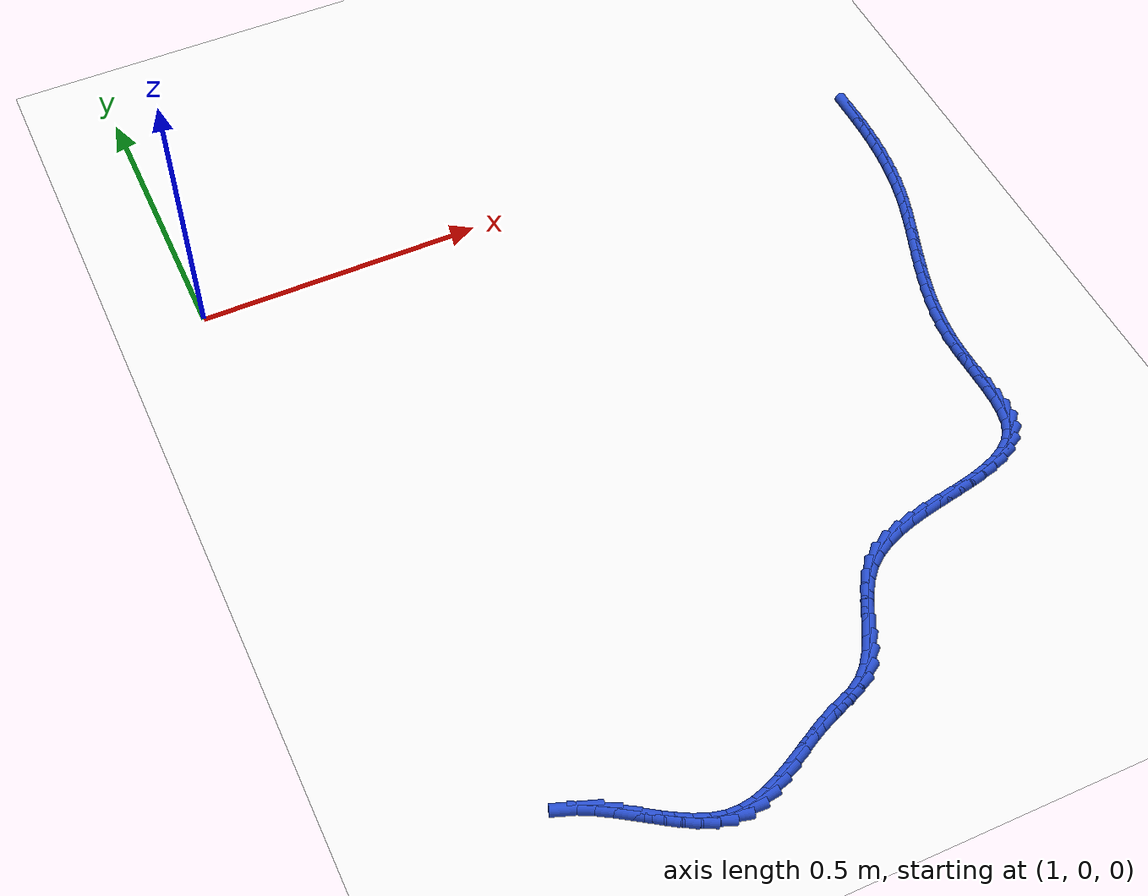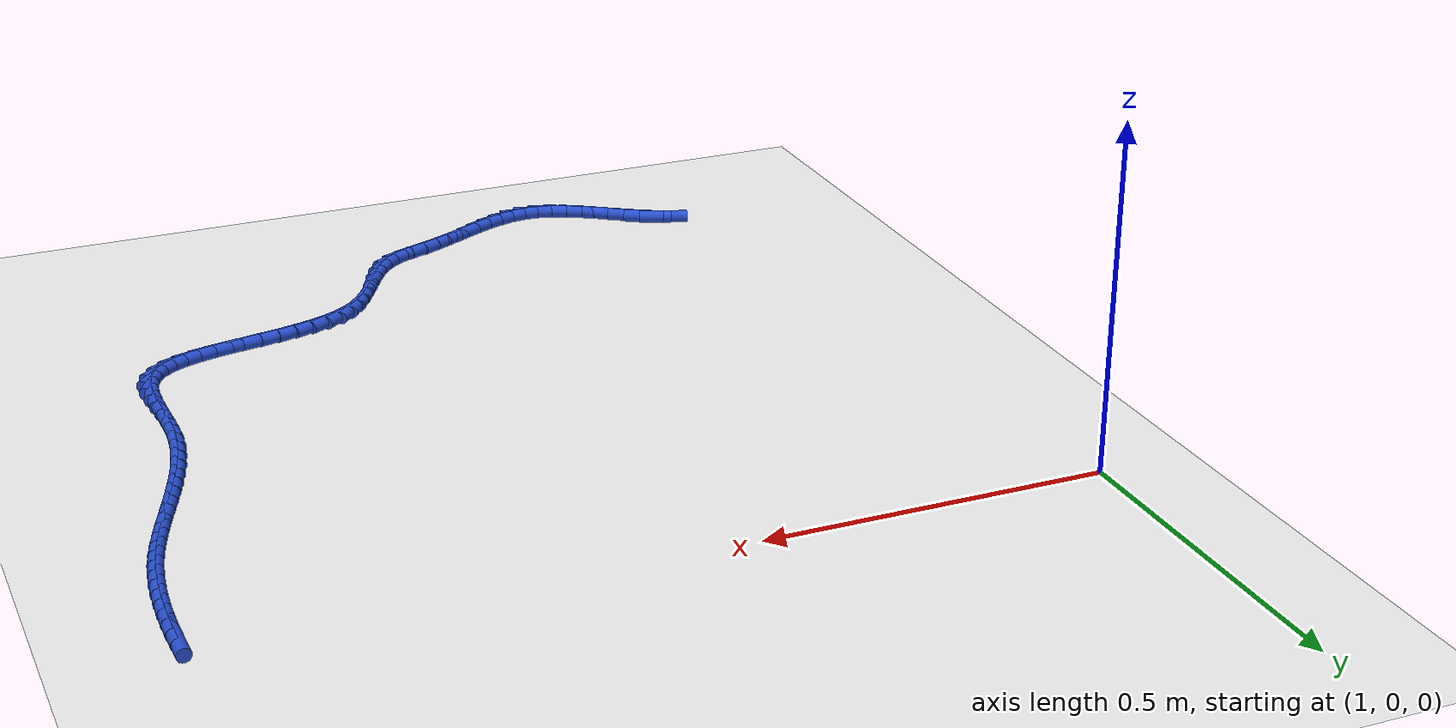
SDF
<sdf version="1.6">
 <world name="default">
  <model name="ground_plane">
   <static>1</static>
   <link name="link">
    <collision name="collision">
     <geometry><plane><normal>0 0 1</normal><size>100 100</size></plane></geometry>
     <surface><friction><ode><mu>100</mu><mu2>50</mu2></ode></friction></surface>
    </collision>
    <visual name="visual">
     <cast_shadows>0</cast_shadows>
     <geometry><plane><normal>0 0 1</normal><size>100 100</size></plane></geometry>
     <material>
      <script><uri>file://media/materials/scripts/gazebo.material</uri><name>Gazebo/WhiteGlow</name></script>
     </material>
    </visual>
   </link>
  </model>
  <model name="line">
   <link name="link_144">
    <pose>2.246459539599185 -0.03094970939625221 0.01 0 1.57 -1.5632055509941005</pose>
    <collision name="collision">
     <geometry><cylinder><radius>0.01</radius><length>0.08</length></cylinder></geometry>
    </collision>
    <visual name="visual">
     <material>
      <script><name>Gazebo/Blue</name><uri>file://media/materials/scripts/gazebo.material</uri></script>
     </material>
     <geometry><cylinder><radius>0.01</radius><length>0.08</length></cylinder></geometry>
    </visual>
   </link>
   <link name="link_145">
    <pose>2.2466534871471384 -0.05649964367842406 0.01 0 1.57 1.5554515315531487</pose>
    <collision name="collision">
     <geometry><cylinder><radius>0.01</radius><length>0.08</length></cylinder></geometry>
    </collision>
    <visual name="visual">
     <material>
      <script><name>Gazebo/Blue</name><uri>file://media/materials/scripts/gazebo.material</uri></script>
     </material>
     <geometry><cylinder><radius>0.01</radius><length>0.08</length></cylinder></geometry>
    </visual>
   </link>
   <link name="link_146">
    <pose>2.246263475280511 -0.08191420600495972 0.01 0 1.57 1.5299137964669351</pose>
    <collision name="collision">
     <geometry><cylinder><radius>0.01</radius><length>0.08</length></cylinder></geometry>
    </collision>
    <visual name="visual">
     <material>
      <script><name>Gazebo/Blue</name><uri>file://media/materials/scripts/gazebo.material</uri></script>
     </material>
     <geometry><cylinder><radius>0.01</radius><length>0.08</length></cylinder></geometry>
    </visual>
   </link>
   <link name="link_147">
    <pose>2.2452302553174794 -0.10717302085228136 0.01 0 1.57 1.5017082751921802</pose>
    <collision name="collision">
     <geometry><cylinder><radius>0.01</radius><length>0.08</length></cylinder></geometry>
    </collision>
    <visual name="visual">
     <material>
      <script><name>Gazebo/Blue</name><uri>file://media/materials/scripts/gazebo.material</uri></script>
     </material>
     <geometry><cylinder><radius>0.01</radius><length>0.08</length></cylinder></geometry>
    </visual>
   </link>
   <link name="link_148">
    <pose>2.243494578576221 -0.13225571269681102 0.01 0 1.57 1.470779055072106</pose>
    <collision name="collision">
     <geometry><cylinder><radius>0.01</radius><length>0.08</length></cylinder></geometry>
    </collision>
    <visual name="visual">
     <material>
      <script><name>Gazebo/Blue</name><uri>file://media/materials/scripts/gazebo.material</uri></script>
     </material>
     <geometry><cylinder><radius>0.01</radius><length>0.08</length></cylinder></geometry>
    </visual>
   </link>
   <link name="link_149">
    <pose>2.2409971963749107 -0.15714190601497086 0.01 0 1.57 1.4370862235217339</pose>
    <collision name="collision">
     <geometry><cylinder><radius>0.01</radius><length>0.08</length></cylinder></geometry>
    </collision>
    <visual name="visual">
     <material>
      <script><name>Gazebo/Blue</name><uri>file://media/materials/scripts/gazebo.material</uri></script>
     </material>
     <geometry><cylinder><radius>0.01</radius><length>0.08</length></cylinder></geometry>
    </visual>
   </link>
   <link name="link_150">
    <pose>2.2376788600317274 -0.18181122528318308 0.01 0 1.57 1.400613137324725</pose>
    <collision name="collision">
     <geometry><cylinder><radius>0.01</radius><length>0.08</length></cylinder></geometry>
    </collision>
    <visual name="visual">
     <material>
      <script><name>Gazebo/Blue</name><uri>file://media/materials/scripts/gazebo.material</uri></script>
     </material>
     <geometry><cylinder><radius>0.01</radius><length>0.08</length></cylinder></geometry>
    </visual>
   </link>
   <link name="link_151">
    <pose>2.2334803208648473 -0.20624329497786964 0.01 0 1.57 1.3613744743441831</pose>
    <collision name="collision">
     <geometry><cylinder><radius>0.01</radius><length>0.08</length></cylinder></geometry>
    </collision>
    <visual name="visual">
     <material>
      <script><name>Gazebo/Blue</name><uri>file://media/materials/scripts/gazebo.material</uri></script>
     </material>
     <geometry><cylinder><radius>0.01</radius><length>0.08</length></cylinder></geometry>
    </visual>
   </link>
   <link name="link_152">
    <pose>2.2283423301924468 -0.23041773957545206 0.01 0 1.57 1.3198387701839525</pose>
    <collision name="collision">
     <geometry><cylinder><radius>0.01</radius><length>0.08</length></cylinder></geometry>
    </collision>
    <visual name="visual">
     <material>
      <script><name>Gazebo/Blue</name><uri>file://media/materials/scripts/gazebo.material</uri></script>
     </material>
     <geometry><cylinder><radius>0.01</radius><length>0.08</length></cylinder></geometry>
    </visual>
   </link>
   <link name="link_153">
    <pose>2.222215231470859 -0.2543179077056918 0.01 0 1.57 1.2821159260813804</pose>
    <collision name="collision">
     <geometry><cylinder><radius>0.01</radius><length>0.08</length></cylinder></geometry>
    </collision>
    <visual name="visual">
     <material>
      <script><name>Gazebo/Blue</name><uri>file://media/materials/scripts/gazebo.material</uri></script>
     </material>
     <geometry><cylinder><radius>0.01</radius><length>0.08</length></cylinder></geometry>
    </visual>
   </link>
   <link name="link_154">
    <pose>2.215187877704944 -0.2779809244128485 0.01 0 1.57 1.2528733923422144</pose>
    <collision name="collision">
     <geometry><cylinder><radius>0.01</radius><length>0.08</length></cylinder></geometry>
    </collision>
    <visual name="visual">
     <material>
      <script><name>Gazebo/Blue</name><uri>file://media/materials/scripts/gazebo.material</uri></script>
     </material>
     <geometry><cylinder><radius>0.01</radius><length>0.08</length></cylinder></geometry>
    </visual>
   </link>
   <link name="link_155">
    <pose>2.207453237638342 -0.30148433773861705 0.01 0 1.57 1.2322741911832809</pose>
    <collision name="collision">
     <geometry><cylinder><radius>0.01</radius><length>0.08</length></cylinder></geometry>
    </collision>
    <visual name="visual">
     <material>
      <script><name>Gazebo/Blue</name><uri>file://media/materials/scripts/gazebo.material</uri></script>
     </material>
     <geometry><cylinder><radius>0.01</radius><length>0.08</length></cylinder></geometry>
    </visual>
   </link>
   <link name="link_156">
    <pose>2.199206817226497 -0.32490668079868207 0.01 0 1.57 1.2202765274163798</pose>
    <collision name="collision">
     <geometry><cylinder><radius>0.01</radius><length>0.08</length></cylinder></geometry>
    </collision>
    <visual name="visual">
     <material>
      <script><name>Gazebo/Blue</name><uri>file://media/materials/scripts/gazebo.material</uri></script>
     </material>
     <geometry><cylinder><radius>0.01</radius><length>0.08</length></cylinder></geometry>
    </visual>
   </link>
   <link name="link_157">
    <pose>2.190644122424851 -0.34832648670872807 0.01 0 1.57 1.216790198376191</pose>
    <collision name="collision">
     <geometry><cylinder><radius>0.01</radius><length>0.08</length></cylinder></geometry>
    </collision>
    <visual name="visual">
     <material>
      <script><name>Gazebo/Blue</name><uri>file://media/materials/scripts/gazebo.material</uri></script>
     </material>
     <geometry><cylinder><radius>0.01</radius><length>0.08</length></cylinder></geometry>
    </visual>
   </link>
   <link name="link_158">
    <pose>2.181960659188846 -0.37182228858443933 0.01 0 1.57 1.2217039969587282</pose>
    <collision name="collision">
     <geometry><cylinder><radius>0.01</radius><length>0.08</length></cylinder></geometry>
    </collision>
    <visual name="visual">
     <material>
      <script><name>Gazebo/Blue</name><uri>file://media/materials/scripts/gazebo.material</uri></script>
     </material>
     <geometry><cylinder><radius>0.01</radius><length>0.08</length></cylinder></geometry>
    </visual>
   </link>
   <link name="link_159">
    <pose>2.173351933473927 -0.39547261954150065 0.01 0 1.57 1.2348940418488967</pose>
    <collision name="collision">
     <geometry><cylinder><radius>0.01</radius><length>0.08</length></cylinder></geometry>
    </collision>
    <visual name="visual">
     <material>
      <script><name>Gazebo/Blue</name><uri>file://media/materials/scripts/gazebo.material</uri></script>
     </material>
     <geometry><cylinder><radius>0.01</radius><length>0.08</length></cylinder></geometry>
    </visual>
   </link>
   <link name="link_160">
    <pose>2.165013451235535 -0.4193560126955963 0.01 0 1.57 1.2562145105029123</pose>
    <collision name="collision">
     <geometry><cylinder><radius>0.01</radius><length>0.08</length></cylinder></geometry>
    </collision>
    <visual name="visual">
     <material>
      <script><name>Gazebo/Blue</name><uri>file://media/materials/scripts/gazebo.material</uri></script>
     </material>
     <geometry><cylinder><radius>0.01</radius><length>0.08</length></cylinder></geometry>
    </visual>
   </link>
   <link name="link_161">
    <pose>2.1571407184291136 -0.44355100116241086 0.01 0 1.57 1.285472781796806</pose>
    <collision name="collision">
     <geometry><cylinder><radius>0.01</radius><length>0.08</length></cylinder></geometry>
    </collision>
    <visual name="visual">
     <material>
      <script><name>Gazebo/Blue</name><uri>file://media/materials/scripts/gazebo.material</uri></script>
     </material>
     <geometry><cylinder><radius>0.01</radius><length>0.08</length></cylinder></geometry>
    </visual>
   </link>
   <link name="link_162">
    <pose>2.149929241010105 -0.46813611805762867 0.01 0 1.57 1.3223918869950162</pose>
    <collision name="collision">
     <geometry><cylinder><radius>0.01</radius><length>0.08</length></cylinder></geometry>
    </collision>
    <visual name="visual">
     <material>
      <script><name>Gazebo/Blue</name><uri>file://media/materials/scripts/gazebo.material</uri></script>
     </material>
     <geometry><cylinder><radius>0.01</radius><length>0.08</length></cylinder></geometry>
    </visual>
   </link>
   <link name="link_163">
    <pose>2.1435745249339533 -0.49318989649693445 0.01 0 1.57 1.3665650085226213</pose>
    <collision name="collision">
     <geometry><cylinder><radius>0.01</radius><length>0.08</length></cylinder></geometry>
    </collision>
    <visual name="visual">
     <material>
      <script><name>Gazebo/Blue</name><uri>file://media/materials/scripts/gazebo.material</uri></script>
     </material>
     <geometry><cylinder><radius>0.01</radius><length>0.08</length></cylinder></geometry>
    </visual>
   </link>
   <link name="link_164">
    <pose>2.1382720761561007 -0.5187908695960127 0.01 0 1.57 1.4174096391313418</pose>
    <collision name="collision">
     <geometry><cylinder><radius>0.01</radius><length>0.08</length></cylinder></geometry>
    </collision>
    <visual name="visual">
     <material>
      <script><name>Gazebo/Blue</name><uri>file://media/materials/scripts/gazebo.material</uri></script>
     </material>
     <geometry><cylinder><radius>0.01</radius><length>0.08</length></cylinder></geometry>
    </visual>
   </link>
   <link name="link_165">
    <pose>2.1342174006319903 -0.5450175704705478 0.01 0 1.57 1.4741322091356461</pose>
    <collision name="collision">
     <geometry><cylinder><radius>0.01</radius><length>0.08</length></cylinder></geometry>
    </collision>
    <visual name="visual">
     <material>
      <script><name>Gazebo/Blue</name><uri>file://media/materials/scripts/gazebo.material</uri></script>
     </material>
     <geometry><cylinder><radius>0.01</radius><length>0.08</length></cylinder></geometry>
    </visual>
   </link>
   <link name="link_166">
    <pose>2.1316060043170646 -0.5719485322362241 0.01 0 1.57 1.5346683767386964</pose>
    <collision name="collision">
     <geometry><cylinder><radius>0.01</radius><length>0.08</length></cylinder></geometry>
    </collision>
    <visual name="visual">
     <material>
      <script><name>Gazebo/Blue</name><uri>file://media/materials/scripts/gazebo.material</uri></script>
     </material>
     <geometry><cylinder><radius>0.01</radius><length>0.08</length></cylinder></geometry>
    </visual>
   </link>
   <link name="link_167">
    <pose>2.1306049950566575 -0.5996438126378468 0.01 0 1.57 -1.561454205841342</pose>
    <collision name="collision">
     <geometry><cylinder><radius>0.01</radius><length>0.08</length></cylinder></geometry>
    </collision>
    <visual name="visual">
     <material>
      <script><name>Gazebo/Blue</name><uri>file://media/materials/scripts/gazebo.material</uri></script>
     </material>
     <geometry><cylinder><radius>0.01</radius><length>0.08</length></cylinder></geometry>
    </visual>
   </link>
   <link name="link_168">
    <pose>2.1308683178793055 -0.6278296136345546 0.01 0 1.57 -1.5446243435112252</pose>
    <collision name="collision">
     <geometry><cylinder><radius>0.01</radius><length>0.08</length></cylinder></geometry>
    </collision>
    <visual name="visual">
     <material>
      <script><name>Gazebo/Blue</name><uri>file://media/materials/scripts/gazebo.material</uri></script>
     </material>
     <geometry><cylinder><radius>0.01</radius><length>0.08</length></cylinder></geometry>
    </visual>
   </link>
   <link name="link_169">
    <pose>2.131604247827486 -0.6559421911908158 0.01 0 1.57 -1.5561611965070263</pose>
    <collision name="collision">
     <geometry><cylinder><radius>0.01</radius><length>0.08</length></cylinder></geometry>
    </collision>
    <visual name="visual">
     <material>
      <script><name>Gazebo/Blue</name><uri>file://media/materials/scripts/gazebo.material</uri></script>
     </material>
     <geometry><cylinder><radius>0.01</radius><length>0.08</length></cylinder></geometry>
    </visual>
   </link>
   <link name="link_170">
    <pose>2.132006244599332 -0.6834081626373893 0.01 0 1.57 1.5426669963017228</pose>
    <collision name="collision">
     <geometry><cylinder><radius>0.01</radius><length>0.08</length></cylinder></geometry>
    </collision>
    <visual name="visual">
     <material>
      <script><name>Gazebo/Blue</name><uri>file://media/materials/scripts/gazebo.material</uri></script>
     </material>
     <geometry><cylinder><radius>0.01</radius><length>0.08</length></cylinder></geometry>
    </visual>
   </link>
   <link name="link_171">
    <pose>2.131267767892976 -0.7096541453050315 0.01 0 1.57 1.4614104199110989</pose>
    <collision name="collision">
     <geometry><cylinder><radius>0.01</radius><length>0.08</length></cylinder></geometry>
    </collision>
    <visual name="visual">
     <material>
      <script><name>Gazebo/Blue</name><uri>file://media/materials/scripts/gazebo.material</uri></script>
     </material>
     <geometry><cylinder><radius>0.01</radius><length>0.08</length></cylinder></geometry>
    </visual>
   </link>
   <link name="link_172">
    <pose>2.1285822774065535 -0.7341067565244995 0.01 0 1.57 1.329333005715901</pose>
    <collision name="collision">
     <geometry><cylinder><radius>0.01</radius><length>0.08</length></cylinder></geometry>
    </collision>
    <visual name="visual">
     <material>
      <script><name>Gazebo/Blue</name><uri>file://media/materials/scripts/gazebo.material</uri></script>
     </material>
     <geometry><cylinder><radius>0.01</radius><length>0.08</length></cylinder></geometry>
    </visual>
   </link>
   <link name="link_173">
    <pose>2.123143232838197 -0.7561926136265507 0.01 0 1.57 1.131407792978323</pose>
    <collision name="collision">
     <geometry><cylinder><radius>0.01</radius><length>0.08</length></cylinder></geometry>
    </collision>
    <visual name="visual">
     <material>
      <script><name>Gazebo/Blue</name><uri>file://media/materials/scripts/gazebo.material</uri></script>
     </material>
     <geometry><cylinder><radius>0.01</radius><length>0.08</length></cylinder></geometry>
    </visual>
   </link>
   <link name="link_174">
    <pose>2.114144096914351 -0.7753383363444399 0.01 0 1.57 0.878369589600908</pose>
    <collision name="collision">
     <geometry><cylinder><radius>0.01</radius><length>0.08</length></cylinder></geometry>
    </collision>
    <visual name="visual">
     <material>
      <script><name>Gazebo/Blue</name><uri>file://media/materials/scripts/gazebo.material</uri></script>
     </material>
     <geometry><cylinder><radius>0.01</radius><length>0.08</length></cylinder></geometry>
    </visual>
   </link>
   <link name="link_175">
    <pose>2.1010196048852743 -0.7911619569862904 0.01 0 1.57 0.6489696468570989</pose>
    <collision name="collision">
     <geometry><cylinder><radius>0.01</radius><length>0.08</length></cylinder></geometry>
    </collision>
    <visual name="visual">
     <material>
      <script><name>Gazebo/Blue</name><uri>file://media/materials/scripts/gazebo.material</uri></script>
     </material>
     <geometry><cylinder><radius>0.01</radius><length>0.08</length></cylinder></geometry>
    </visual>
   </link>
   <link name="link_176">
    <pose>2.0841031400354204 -0.8039944466209452 0.01 0 1.57 0.4737260098855911</pose>
    <collision name="collision">
     <geometry><cylinder><radius>0.01</radius><length>0.08</length></cylinder></geometry>
    </collision>
    <visual name="visual">
     <material>
      <script><name>Gazebo/Blue</name><uri>file://media/materials/scripts/gazebo.material</uri></script>
     </material>
     <geometry><cylinder><radius>0.01</radius><length>0.08</length></cylinder></geometry>
    </visual>
   </link>
   <link name="link_177">
    <pose>2.0639372660194786 -0.8143327287126775 0.01 0 1.57 0.3496837506233255</pose>
    <collision name="collision">
     <geometry><cylinder><radius>0.01</radius><length>0.08</length></cylinder></geometry>
    </collision>
    <visual name="visual">
     <material>
      <script><name>Gazebo/Blue</name><uri>file://media/materials/scripts/gazebo.material</uri></script>
     </material>
     <geometry><cylinder><radius>0.01</radius><length>0.08</length></cylinder></geometry>
    </visual>
   </link>
   <link name="link_178">
    <pose>2.0410645464921386 -0.8226737267257603 0.01 0 1.57 0.26671164336916037</pose>
    <collision name="collision">
     <geometry><cylinder><radius>0.01</radius><length>0.08</length></cylinder></geometry>
    </collision>
    <visual name="visual">
     <material>
      <script><name>Gazebo/Blue</name><uri>file://media/materials/scripts/gazebo.material</uri></script>
     </material>
     <geometry><cylinder><radius>0.01</radius><length>0.08</length></cylinder></geometry>
    </visual>
   </link>
   <link name="link_179">
    <pose>2.016027545108089 -0.8295143641244672 0.01 0 1.57 0.21555835182775654</pose>
    <collision name="collision">
     <geometry><cylinder><radius>0.01</radius><length>0.08</length></cylinder></geometry>
    </collision>
    <visual name="visual">
     <material>
      <script><name>Gazebo/Blue</name><uri>file://media/materials/scripts/gazebo.material</uri></script>
     </material>
     <geometry><cylinder><radius>0.01</radius><length>0.08</length></cylinder></geometry>
    </visual>
   </link>
   <link name="link_180">
    <pose>1.9893688255220197 -0.8353515643730712 0.01 0 1.57 0.18986590845310305</pose>
    <collision name="collision">
     <geometry><cylinder><radius>0.01</radius><length>0.08</length></cylinder></geometry>
    </collision>
    <visual name="visual">
     <material>
      <script><name>Gazebo/Blue</name><uri>file://media/materials/scripts/gazebo.material</uri></script>
     </material>
     <geometry><cylinder><radius>0.01</radius><length>0.08</length></cylinder></geometry>
    </visual>
   </link>
   <link name="link_181">
    <pose>1.9616309513886188 -0.8406822509358454 0.01 0 1.57 0.18601869444322106</pose>
    <collision name="collision">
     <geometry><cylinder><radius>0.01</radius><length>0.08</length></cylinder></geometry>
    </collision>
    <visual name="visual">
     <material>
      <script><name>Gazebo/Blue</name><uri>file://media/materials/scripts/gazebo.material</uri></script>
     </material>
     <geometry><cylinder><radius>0.01</radius><length>0.08</length></cylinder></geometry>
    </visual>
   </link>
   <link name="link_182">
    <pose>1.9333564863625758 -0.8460033472770632 0.01 0 1.57 0.20265307832345208</pose>
    <collision name="collision">
     <geometry><cylinder><radius>0.01</radius><length>0.08</length></cylinder></geometry>
    </collision>
    <visual name="visual">
     <material>
      <script><name>Gazebo/Blue</name><uri>file://media/materials/scripts/gazebo.material</uri></script>
     </material>
     <geometry><cylinder><radius>0.01</radius><length>0.08</length></cylinder></geometry>
    </visual>
   </link>
   <link name="link_183">
    <pose>1.9050879940985803 -0.8518117768609977 0.01 0 1.57 0.24031141588963426</pose>
    <collision name="collision">
     <geometry><cylinder><radius>0.01</radius><length>0.08</length></cylinder></geometry>
    </collision>
    <visual name="visual">
     <material>
      <script><name>Gazebo/Blue</name><uri>file://media/materials/scripts/gazebo.material</uri></script>
     </material>
     <geometry><cylinder><radius>0.01</radius><length>0.08</length></cylinder></geometry>
    </visual>
   </link>
   <link name="link_184">
    <pose>1.8773680382513216 -0.8586044631519218 0.01 0 1.57 0.3012537939110839</pose>
    <collision name="collision">
     <geometry><cylinder><radius>0.01</radius><length>0.08</length></cylinder></geometry>
    </collision>
    <visual name="visual">
     <material>
      <script><name>Gazebo/Blue</name><uri>file://media/materials/scripts/gazebo.material</uri></script>
     </material>
     <geometry><cylinder><radius>0.01</radius><length>0.08</length></cylinder></geometry>
    </visual>
   </link>
   <link name="link_185">
    <pose>1.850739182475488 -0.8668783296141094 0.01 0 1.57 0.3892322159806557</pose>
    <collision name="collision">
     <geometry><cylinder><radius>0.01</radius><length>0.08</length></cylinder></geometry>
    </collision>
    <visual name="visual">
     <material>
      <script><name>Gazebo/Blue</name><uri>file://media/materials/scripts/gazebo.material</uri></script>
     </material>
     <geometry><cylinder><radius>0.01</radius><length>0.08</length></cylinder></geometry>
    </visual>
   </link>
   <link name="link_186">
    <pose>1.825743990425769 -0.8771302997118333 0.01 0 1.57 0.5087644582064051</pose>
    <collision name="collision">
     <geometry><cylinder><radius>0.01</radius><length>0.08</length></cylinder></geometry>
    </collision>
    <visual name="visual">
     <material>
      <script><name>Gazebo/Blue</name><uri>file://media/materials/scripts/gazebo.material</uri></script>
     </material>
     <geometry><cylinder><radius>0.01</radius><length>0.08</length></cylinder></geometry>
    </visual>
   </link>
   <link name="link_187">
    <pose>1.8029250257568536 -0.8898572969093668 0.01 0 1.57 0.6630652616357313</pose>
    <collision name="collision">
     <geometry><cylinder><radius>0.01</radius><length>0.08</length></cylinder></geometry>
    </collision>
    <visual name="visual">
     <material>
      <script><name>Gazebo/Blue</name><uri>file://media/materials/scripts/gazebo.material</uri></script>
     </material>
     <geometry><cylinder><radius>0.01</radius><length>0.08</length></cylinder></geometry>
    </visual>
   </link>
   <link name="link_188">
    <pose>1.7828247732679519 -0.905556161501516 0.01 0 1.57 0.8342156827469633</pose>
    <collision name="collision">
     <geometry><cylinder><radius>0.01</radius><length>0.08</length></cylinder></geometry>
    </collision>
    <visual name="visual">
     <material>
      <script><name>Gazebo/Blue</name><uri>file://media/materials/scripts/gazebo.material</uri></script>
     </material>
     <geometry><cylinder><radius>0.01</radius><length>0.08</length></cylinder></geometry>
    </visual>
   </link>
   <link name="link_189">
    <pose>1.7657082541960665 -0.9244310908783977 0.01 0 1.57 0.9647170492106234</pose>
    <collision name="collision">
     <geometry><cylinder><radius>0.01</radius><length>0.08</length></cylinder></geometry>
    </collision>
    <visual name="visual">
     <material>
      <script><name>Gazebo/Blue</name><uri>file://media/materials/scripts/gazebo.material</uri></script>
     </material>
     <geometry><cylinder><radius>0.01</radius><length>0.08</length></cylinder></geometry>
    </visual>
   </link>
   <link name="link_190">
    <pose>1.7509408548769738 -0.9457374307374564 0.01 0 1.57 1.044876318642683</pose>
    <collision name="collision">
     <geometry><cylinder><radius>0.01</radius><length>0.08</length></cylinder></geometry>
    </collision>
    <visual name="visual">
     <material>
      <script><name>Gazebo/Blue</name><uri>file://media/materials/scripts/gazebo.material</uri></script>
     </material>
     <geometry><cylinder><radius>0.01</radius><length>0.08</length></cylinder></geometry>
    </visual>
   </link>
   <link name="link_191">
    <pose>1.7377059526594365 -0.9685385605294121 0.01 0 1.57 1.0788169416677866</pose>
    <collision name="collision">
     <geometry><cylinder><radius>0.01</radius><length>0.08</length></cylinder></geometry>
    </collision>
    <visual name="visual">
     <material>
      <script><name>Gazebo/Blue</name><uri>file://media/materials/scripts/gazebo.material</uri></script>
     </material>
     <geometry><cylinder><radius>0.01</radius><length>0.08</length></cylinder></geometry>
    </visual>
   </link>
   <link name="link_192">
    <pose>1.7251869248922167 -0.9918978597049852 0.01 0 1.57 1.068611180687986</pose>
    <collision name="collision">
     <geometry><cylinder><radius>0.01</radius><length>0.08</length></cylinder></geometry>
    </collision>
    <visual name="visual">
     <material>
      <script><name>Gazebo/Blue</name><uri>file://media/materials/scripts/gazebo.material</uri></script>
     </material>
     <geometry><cylinder><radius>0.01</radius><length>0.08</length></cylinder></geometry>
    </visual>
   </link>
   <link name="link_193">
    <pose>1.7125671489240761 -1.014878707714896 0.01 0 1.57 1.0123285688823616</pose>
    <collision name="collision">
     <geometry><cylinder><radius>0.01</radius><length>0.08</length></cylinder></geometry>
    </collision>
    <visual name="visual">
     <material>
      <script><name>Gazebo/Blue</name><uri>file://media/materials/scripts/gazebo.material</uri></script>
     </material>
     <geometry><cylinder><radius>0.01</radius><length>0.08</length></cylinder></geometry>
    </visual>
   </link>
   <link name="link_194">
    <pose>1.6990300021037763 -1.0365444840098643 0.01 0 1.57 0.904278996453696</pose>
    <collision name="collision">
     <geometry><cylinder><radius>0.01</radius><length>0.08</length></cylinder></geometry>
    </collision>
    <visual name="visual">
     <material>
      <script><name>Gazebo/Blue</name><uri>file://media/materials/scripts/gazebo.material</uri></script>
     </material>
     <geometry><cylinder><radius>0.01</radius><length>0.08</length></cylinder></geometry>
    </visual>
   </link>
   <link name="link_195">
    <pose>1.6837588617800803 -1.0559585680406107 0.01 0 1.57 0.7385572336043673</pose>
    <collision name="collision">
     <geometry><cylinder><radius>0.01</radius><length>0.08</length></cylinder></geometry>
    </collision>
    <visual name="visual">
     <material>
      <script><name>Gazebo/Blue</name><uri>file://media/materials/scripts/gazebo.material</uri></script>
     </material>
     <geometry><cylinder><radius>0.01</radius><length>0.08</length></cylinder></geometry>
    </visual>
   </link>
   <link name="link_196">
    <pose>1.6659371053017504 -1.072184339257856 0.01 0 1.57 0.5390092194526042</pose>
    <collision name="collision">
     <geometry><cylinder><radius>0.01</radius><length>0.08</length></cylinder></geometry>
    </collision>
    <visual name="visual">
     <material>
      <script><name>Gazebo/Blue</name><uri>file://media/materials/scripts/gazebo.material</uri></script>
     </material>
     <geometry><cylinder><radius>0.01</radius><length>0.08</length></cylinder></geometry>
    </visual>
   </link>
   <link name="link_197">
    <pose>1.645028487405623 -1.0846894415227086 0.01 0 1.57 0.41059610874706864</pose>
    <collision name="collision">
     <geometry><cylinder><radius>0.01</radius><length>0.08</length></cylinder></geometry>
    </collision>
    <visual name="visual">
     <material>
      <script><name>Gazebo/Blue</name><uri>file://media/materials/scripts/gazebo.material</uri></script>
     </material>
     <geometry><cylinder><radius>0.01</radius><length>0.08</length></cylinder></geometry>
    </visual>
   </link>
   <link name="link_198">
    <pose>1.621789948786721 -1.0948061093556751 0.01 0 1.57 0.3742159219279309</pose>
    <collision name="collision">
     <geometry><cylinder><radius>0.01</radius><length>0.08</length></cylinder></geometry>
    </collision>
    <visual name="visual">
     <material>
      <script><name>Gazebo/Blue</name><uri>file://media/materials/scripts/gazebo.material</uri></script>
     </material>
     <geometry><cylinder><radius>0.01</radius><length>0.08</length></cylinder></geometry>
    </visual>
   </link>
   <link name="link_199">
    <pose>1.5973510189208877 -1.1044037974319605 0.01 0 1.57 0.41449347443925905</pose>
    <collision name="collision">
     <geometry><cylinder><radius>0.01</radius><length>0.08</length></cylinder></geometry>
    </collision>
    <visual name="visual">
     <material>
      <script><name>Gazebo/Blue</name><uri>file://media/materials/scripts/gazebo.material</uri></script>
     </material>
     <geometry><cylinder><radius>0.01</radius><length>0.08</length></cylinder></geometry>
    </visual>
   </link>
   <link name="link_200">
    <pose>1.572781213119182 -1.1152141190073894 0.01 0 1.57 0.46506822281233556</pose>
    <collision name="collision">
     <geometry><cylinder><radius>0.01</radius><length>0.08</length></cylinder></geometry>
    </collision>
    <visual name="visual">
     <material>
      <script><name>Gazebo/Blue</name><uri>file://media/materials/scripts/gazebo.material</uri></script>
     </material>
     <geometry><cylinder><radius>0.01</radius><length>0.08</length></cylinder></geometry>
    </visual>
   </link>
   <link name="link_201">
    <pose>1.5484720894462203 -1.1274118789028549 0.01 0 1.57 0.4877509710995159</pose>
    <collision name="collision">
     <geometry><cylinder><radius>0.01</radius><length>0.08</length></cylinder></geometry>
    </collision>
    <visual name="visual">
     <material>
      <script><name>Gazebo/Blue</name><uri>file://media/materials/scripts/gazebo.material</uri></script>
     </material>
     <geometry><cylinder><radius>0.01</radius><length>0.08</length></cylinder></geometry>
    </visual>
   </link>
   <link name="link_202">
    <pose>1.5243871773612785 -1.1401889902500266 0.01 0 1.57 0.48290207357345594</pose>
    <collision name="collision">
     <geometry><cylinder><radius>0.01</radius><length>0.08</length></cylinder></geometry>
    </collision>
    <visual name="visual">
     <material>
      <script><name>Gazebo/Blue</name><uri>file://media/materials/scripts/gazebo.material</uri></script>
     </material>
     <geometry><cylinder><radius>0.01</radius><length>0.08</length></cylinder></geometry>
    </visual>
   </link>
   <link name="link_203">
    <pose>1.5004832816221079 -1.1527219240975881 0.01 0 1.57 0.44948487807176374</pose>
    <collision name="collision">
     <geometry><cylinder><radius>0.01</radius><length>0.08</length></cylinder></geometry>
    </collision>
    <visual name="visual">
     <material>
      <script><name>Gazebo/Blue</name><uri>file://media/materials/scripts/gazebo.material</uri></script>
     </material>
     <geometry><cylinder><radius>0.01</radius><length>0.08</length></cylinder></geometry>
    </visual>
   </link>
   <link name="link_204">
    <pose>1.47671720698646 -1.164187151494223 0.01 0 1.57 0.38433939386534083</pose>
    <collision name="collision">
     <geometry><cylinder><radius>0.01</radius><length>0.08</length></cylinder></geometry>
    </collision>
    <visual name="visual">
     <material>
      <script><name>Gazebo/Blue</name><uri>file://media/materials/scripts/gazebo.material</uri></script>
     </material>
     <geometry><cylinder><radius>0.01</radius><length>0.08</length></cylinder></geometry>
    </visual>
   </link>
   <link name="link_205">
    <pose>1.4530457582120855 -1.1737611434886164 0.01 0 1.57 0.28262535137812866</pose>
    <collision name="collision">
     <geometry><cylinder><radius>0.01</radius><length>0.08</length></cylinder></geometry>
    </collision>
    <visual name="visual">
     <material>
      <script><name>Gazebo/Blue</name><uri>file://media/materials/scripts/gazebo.material</uri></script>
     </material>
     <geometry><cylinder><radius>0.01</radius><length>0.08</length></cylinder></geometry>
    </visual>
   </link>
   <link name="link_206">
    <pose>1.4294257400567358 -1.1806203711294527 0.01 0 1.57 0.13973077666649364</pose>
    <collision name="collision">
     <geometry><cylinder><radius>0.01</radius><length>0.08</length></cylinder></geometry>
    </collision>
    <visual name="visual">
     <material>
      <script><name>Gazebo/Blue</name><uri>file://media/materials/scripts/gazebo.material</uri></script>
     </material>
     <geometry><cylinder><radius>0.01</radius><length>0.08</length></cylinder></geometry>
    </visual>
   </link>
   <link name="link_207">
    <pose>1.4058139572781623 -1.1839413054654158 0.01 0 1.57 -0.043989349150674</pose>
    <collision name="collision">
     <geometry><cylinder><radius>0.01</radius><length>0.08</length></cylinder></geometry>
    </collision>
    <visual name="visual">
     <material>
      <script><name>Gazebo/Blue</name><uri>file://media/materials/scripts/gazebo.material</uri></script>
     </material>
     <geometry><cylinder><radius>0.01</radius><length>0.08</length></cylinder></geometry>
    </visual>
   </link>
   <link name="link_208">
    <pose>1.3821672151091784 -1.1829004291942433 0.01 0 1.57 -0.2429808459842451</pose>
    <collision name="collision">
     <geometry><cylinder><radius>0.01</radius><length>0.08</length></cylinder></geometry>
    </collision>
    <visual name="visual">
     <material>
      <script><name>Gazebo/Blue</name><uri>file://media/materials/scripts/gazebo.material</uri></script>
     </material>
     <geometry><cylinder><radius>0.01</radius><length>0.08</length></cylinder></geometry>
    </visual>
   </link>
   <link name="link_209">
    <pose>1.3584565450007853 -1.1770230667911183 0.01 0 1.57 -0.3958261222232011</pose>
    <collision name="collision">
     <geometry><cylinder><radius>0.01</radius><length>0.08</length></cylinder></geometry>
    </collision>
    <visual name="visual">
     <material>
      <script><name>Gazebo/Blue</name><uri>file://media/materials/scripts/gazebo.material</uri></script>
     </material>
     <geometry><cylinder><radius>0.01</radius><length>0.08</length></cylinder></geometry>
    </visual>
   </link>
   <link name="link_210">
    <pose>1.3347044838726256 -1.1670975107944144 0.01 0 1.57 -0.4974026059215954</pose>
    <collision name="collision">
     <geometry><cylinder><radius>0.01</radius><length>0.08</length></cylinder></geometry>
    </collision>
    <visual name="visual">
     <material>
      <script><name>Gazebo/Blue</name><uri>file://media/materials/scripts/gazebo.material</uri></script>
     </material>
     <geometry><cylinder><radius>0.01</radius><length>0.08</length></cylinder></geometry>
    </visual>
   </link>
   <link name="link_211">
    <pose>1.310945221050041 -1.154197782940716 0.01 0 1.57 -0.5576050211198195</pose>
    <collision name="collision">
     <geometry><cylinder><radius>0.01</radius><length>0.08</length></cylinder></geometry>
    </collision>
    <visual name="visual">
     <material>
      <script><name>Gazebo/Blue</name><uri>file://media/materials/scripts/gazebo.material</uri></script>
     </material>
     <geometry><cylinder><radius>0.01</radius><length>0.08</length></cylinder></geometry>
    </visual>
   </link>
   <link name="link_212">
    <pose>1.2872129458583743 -1.1393979049666092 0.01 0 1.57 -0.583463681980841</pose>
    <collision name="collision">
     <geometry><cylinder><radius>0.01</radius><length>0.08</length></cylinder></geometry>
    </collision>
    <visual name="visual">
     <material>
      <script><name>Gazebo/Blue</name><uri>file://media/materials/scripts/gazebo.material</uri></script>
     </material>
     <geometry><cylinder><radius>0.01</radius><length>0.08</length></cylinder></geometry>
    </visual>
   </link>
   <link name="link_213">
    <pose>1.263541847622967 -1.1237718986086782 0.01 0 1.57 -0.577980367225597</pose>
    <collision name="collision">
     <geometry><cylinder><radius>0.01</radius><length>0.08</length></cylinder></geometry>
    </collision>
    <visual name="visual">
     <material>
      <script><name>Gazebo/Blue</name><uri>file://media/materials/scripts/gazebo.material</uri></script>
     </material>
     <geometry><cylinder><radius>0.01</radius><length>0.08</length></cylinder></geometry>
    </visual>
   </link>
   <link name="link_214">
    <pose>1.2399661156691624 -1.1083937856035087 0.01 0 1.57 -0.5400585238069281</pose>
    <collision name="collision">
     <geometry><cylinder><radius>0.01</radius><length>0.08</length></cylinder></geometry>
    </collision>
    <visual name="visual">
     <material>
      <script><name>Gazebo/Blue</name><uri>file://media/materials/scripts/gazebo.material</uri></script>
     </material>
     <geometry><cylinder><radius>0.01</radius><length>0.08</length></cylinder></geometry>
    </visual>
   </link>
   <link name="link_215">
    <pose>1.2165199393223025 -1.0943375876876862 0.01 0 1.57 -0.4643018070034969</pose>
    <collision name="collision">
     <geometry><cylinder><radius>0.01</radius><length>0.08</length></cylinder></geometry>
    </collision>
    <visual name="visual">
     <material>
      <script><name>Gazebo/Blue</name><uri>file://media/materials/scripts/gazebo.material</uri></script>
     </material>
     <geometry><cylinder><radius>0.01</radius><length>0.08</length></cylinder></geometry>
    </visual>
   </link>
   <link name="link_216">
    <pose>1.19323750790773 -1.0826773265977958 0.01 0 1.57 -0.3409416072111067</pose>
    <collision name="collision">
     <geometry><cylinder><radius>0.01</radius><length>0.08</length></cylinder></geometry>
    </collision>
    <visual name="visual">
     <material>
      <script><name>Gazebo/Blue</name><uri>file://media/materials/scripts/gazebo.material</uri></script>
     </material>
     <geometry><cylinder><radius>0.01</radius><length>0.08</length></cylinder></geometry>
    </visual>
   </link>
  </model>
 </world>
</sdf>
